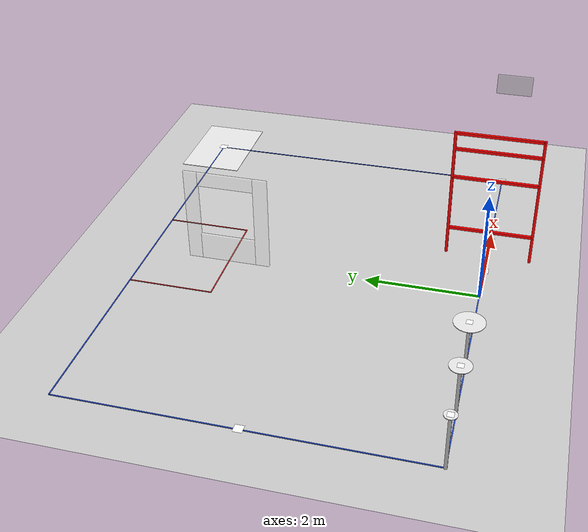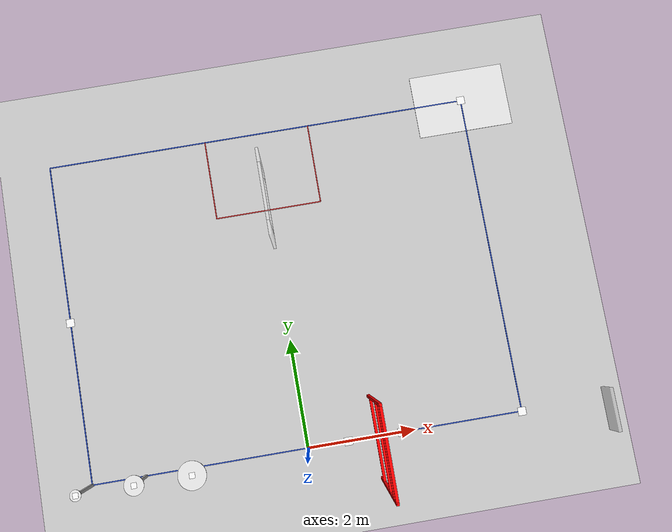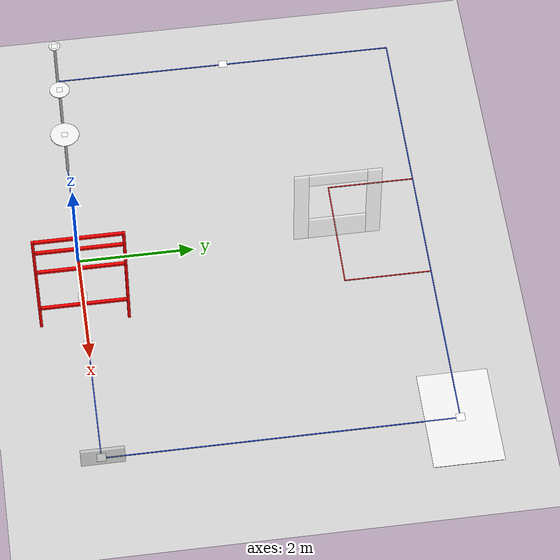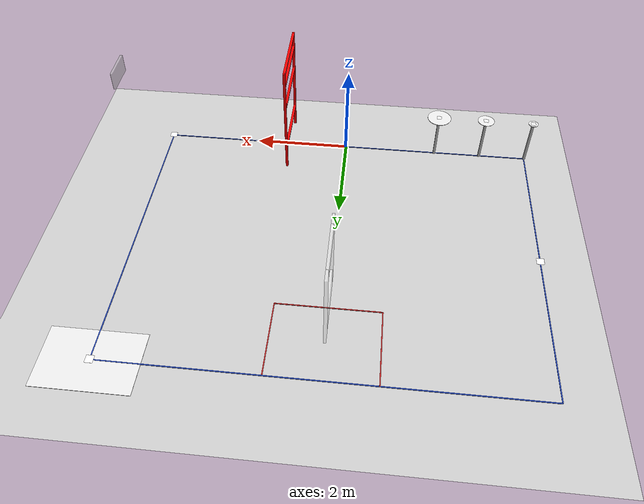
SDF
<sdf version="1.9">
 <world name="imav_course">
  <physics type="ode">
   <max_step_size>0.004</max_step_size>
   <real_time_factor>1.0</real_time_factor>
   <real_time_update_rate>250</real_time_update_rate>
  </physics>
  <plugin name="gz::sim::systems::Physics" filename="gz-sim-physics-system"/>
  <plugin name="gz::sim::systems::UserCommands" filename="gz-sim-user-commands-system"/>
  <plugin name="gz::sim::systems::SceneBroadcaster" filename="gz-sim-scene-broadcaster-system"/>
  <plugin name="gz::sim::systems::Contact" filename="gz-sim-contact-system"/>
  <plugin name="gz::sim::systems::Imu" filename="gz-sim-imu-system"/>
  <plugin name="gz::sim::systems::AirPressure" filename="gz-sim-air-pressure-system"/>
  <plugin name="gz::sim::systems::ApplyLinkWrench" filename="gz-sim-apply-link-wrench-system"/>
  <plugin name="gz::sim::systems::NavSat" filename="gz-sim-navsat-system"/>
  <plugin name="gz::sim::systems::Sensors" filename="gz-sim-sensors-system">
   <render_engine>ogre2</render_engine>
  </plugin>
  <gravity>0 0 -9.81</gravity>
  <magnetic_field>6e-06 2.3e-05 -4.2e-05</magnetic_field>
  <atmosphere type="adiabatic"/>
  <scene>
   <grid>false</grid>
   <ambient>0.4 0.4 0.4 1</ambient>
   <background>0.7 0.7 0.7 1</background>
   <shadows>true</shadows>
  </scene>
  <light name="ambient_light" type="point">
   <cast_shadows>false</cast_shadows>
   <pose>0 0 10 0 0 0</pose>
   <diffuse>0.8 0.8 0.8 1</diffuse>
   <specular>0.2 0.2 0.2 1</specular>
   <attenuation>
    <range>20</range>
    <constant>0.5</constant>
    <linear>0.01</linear>
    <quadratic>0.001</quadratic>
   </attenuation>
  </light>
  <model name="ground_plane">
   <static>true</static>
   <link name="link">
    <collision name="collision">
     <geometry><plane><normal>0 0 1</normal><size>100 100</size></plane></geometry>
    </collision>
    <visual name="visual">
     <geometry><plane><normal>0 0 1</normal><size>100 100</size></plane></geometry>
     <material><ambient>0.8 0.8 0.8 1</ambient><diffuse>0.8 0.8 0.8 1</diffuse></material>
    </visual>
   </link>
  </model>
  <model name="blue_tape_1">
   <static>true</static>
   <link name="link">
    <collision name="collision"><geometry><box><size>8 0.019 0.01</size></box></geometry></collision>
    <visual name="visual">
     <geometry><box><size>8 0.019 0.01</size></box></geometry>
     <material>
      <script><uri>file://media/materials/scripts/gazebo.material</uri><name>Gazebo/Blue</name></script>
     </material>
    </visual>
   </link>
   <pose>0 0 0.005 0 0 0</pose>
  </model>
  <model name="blue_tape_2">
   <static>true</static>
   <link name="link">
    <collision name="collision"><geometry><box><size>8 0.019 0.01</size></box></geometry></collision>
    <visual name="visual">
     <geometry><box><size>8 0.019 0.01</size></box></geometry>
     <material>
      <script><uri>file://media/materials/scripts/gazebo.material</uri><name>Gazebo/Blue</name></script>
     </material>
    </visual>
   </link>
   <pose>0 6 0.005 0 0 0</pose>
  </model>
  <model name="blue_tape_3">
   <static>true</static>
   <link name="link">
    <collision name="collision"><geometry><box><size>6 0.019 0.01</size></box></geometry></collision>
    <visual name="visual">
     <geometry><box><size>6 0.019 0.01</size></box></geometry>
     <material>
      <script><uri>file://media/materials/scripts/gazebo.material</uri><name>Gazebo/Blue</name></script>
     </material>
    </visual>
   </link>
   <pose>4 3 0.005 0 0 1.5708</pose>
  </model>
  <model name="blue_tape_4">
   <static>true</static>
   <link name="link">
    <collision name="collision"><geometry><box><size>6 0.019 0.01</size></box></geometry></collision>
    <visual name="visual">
     <geometry><box><size>6 0.019 0.01</size></box></geometry>
     <material>
      <script><uri>file://media/materials/scripts/gazebo.material</uri><name>Gazebo/Blue</name></script>
     </material>
    </visual>
   </link>
   <pose>-4 3 0.005 0 0 1.5708</pose>
  </model>
  <model name="vertical_gate_52_5">
   <static>true</static>
   <link name="link">
    <collision name="collision"><geometry><box><size>0.05 1.5 0.05</size></box></geometry></collision>
    <visual name="visual">
     <geometry><box><size>0.05 1.5 0.05</size></box></geometry>
     <material><ambient>1 0 0 1</ambient><diffuse>1 0 0 1</diffuse></material>
    </visual>
   </link>
   <pose>1.25 0 0.525 0 0 0</pose>
  </model>
  <model name="vertical_gate_157_5">
   <static>true</static>
   <link name="link">
    <collision name="collision"><geometry><box><size>0.05 1.5 0.05</size></box></geometry></collision>
    <visual name="visual">
     <geometry><box><size>0.05 1.5 0.05</size></box></geometry>
     <material><ambient>1 0 0 1</ambient><diffuse>1 0 0 1</diffuse></material>
    </visual>
   </link>
   <pose>1.25 0 1.575 0 0 0</pose>
  </model>
  <model name="vertical_gate_212_5">
   <static>true</static>
   <link name="link">
    <collision name="collision"><geometry><box><size>0.05 1.5 0.05</size></box></geometry></collision>
    <visual name="visual">
     <geometry><box><size>0.05 1.5 0.05</size></box></geometry>
     <material><ambient>1 0 0 1</ambient><diffuse>1 0 0 1</diffuse></material>
    </visual>
   </link>
   <pose>1.25 0 2.125 0 0 0</pose>
  </model>
  <model name="vertical_gate_242_5">
   <static>true</static>
   <link name="link">
    <collision name="collision"><geometry><box><size>0.05 1.5 0.05</size></box></geometry></collision>
    <visual name="visual">
     <geometry><box><size>0.05 1.5 0.05</size></box></geometry>
     <material><ambient>1 0 0 1</ambient><diffuse>1 0 0 1</diffuse></material>
    </visual>
   </link>
   <pose>1.25 0 2.425 0 0 0</pose>
  </model>
  <model name="vertical_gate_side">
   <static>true</static>
   <link name="link">
    <collision name="collision"><geometry><box><size>0.05 0.05 2.45</size></box></geometry></collision>
    <visual name="visual">
     <geometry><box><size>0.05 0.05 2.45</size></box></geometry>
     <material><ambient>1 0 0 1</ambient><diffuse>1 0 0 1</diffuse></material>
    </visual>
   </link>
   <pose>1.25 0.75 1.225 0 0 0</pose>
  </model>
  <model name="vertical_gate_side_2">
   <static>true</static>
   <link name="link">
    <collision name="collision"><geometry><box><size>0.05 0.05 2.45</size></box></geometry></collision>
    <visual name="visual">
     <geometry><box><size>0.05 0.05 2.45</size></box></geometry>
     <material><ambient>1 0 0 1</ambient><diffuse>1 0 0 1</diffuse></material>
    </visual>
   </link>
   <pose>1.25 -0.75 1.225 0 0 0</pose>
  </model>
  <model name="landing_zone_50">
   <static>true</static>
   <link name="link">
    <collision name="collision">
     <geometry><cylinder><radius>0.25</radius><length>0.01</length></cylinder></geometry>
    </collision>
    <visual name="visual">
     <geometry><cylinder><radius>0.25</radius><length>0.01</length></cylinder></geometry>
     <material>
      <script><uri>file://media/materials/scripts/gazebo.material</uri><name>Gazebo/White</name></script>
     </material>
    </visual>
   </link>
   <pose>-2 0 1.01 0 0 0</pose>
  </model>
  <model name="landing_zone_leg">
   <static>true</static>
   <link name="link">
    <collision name="collision"><geometry><box><size>0.05 0.05 1</size></box></geometry></collision>
    <visual name="visual"><geometry><box><size>0.05 0.05 1</size></box></geometry></visual>
   </link>
   <pose>-4 0 0.5 0 0 0</pose>
  </model>
  <model name="landing_zone_leg_2">
   <static>true</static>
   <link name="link">
    <collision name="collision"><geometry><box><size>0.05 0.05 1</size></box></geometry></collision>
    <visual name="visual"><geometry><box><size>0.05 0.05 1</size></box></geometry></visual>
   </link>
   <pose>-3 0 0.5 0 0 0</pose>
  </model>
  <model name="landing_zone_leg_3">
   <static>true</static>
   <link name="link">
    <collision name="collision"><geometry><box><size>0.05 0.05 1</size></box></geometry></collision>
    <visual name="visual"><geometry><box><size>0.05 0.05 1</size></box></geometry></visual>
   </link>
   <pose>-2 0 0.5 0 0 0</pose>
  </model>
  <model name="landing_zone_35">
   <static>true</static>
   <link name="link">
    <collision name="collision">
     <geometry><cylinder><radius>0.175</radius><length>0.01</length></cylinder></geometry>
    </collision>
    <visual name="visual">
     <geometry><cylinder><radius>0.175</radius><length>0.01</length></cylinder></geometry>
     <material>
      <script><uri>file://media/materials/scripts/gazebo.material</uri><name>Gazebo/White</name></script>
     </material>
    </visual>
   </link>
   <pose>-3 0 1.01 0 0 0</pose>
  </model>
  <model name="landing_zone_20">
   <static>true</static>
   <link name="link">
    <collision name="collision">
     <geometry><cylinder><radius>0.1</radius><length>0.01</length></cylinder></geometry>
    </collision>
    <visual name="visual">
     <geometry><cylinder><radius>0.1</radius><length>0.01</length></cylinder></geometry>
     <material>
      <script><uri>file://media/materials/scripts/gazebo.material</uri><name>Gazebo/White</name></script>
     </material>
    </visual>
   </link>
   <pose>-4 0 1.01 0 0 0</pose>
  </model>
  <model name="wildlife_monitor">
   <static>true</static>
   <link name="link">
    <collision name="collision"><geometry><box><size>0.05 0.708 0.398</size></box></geometry></collision>
    <visual name="visual">
     <geometry><box><size>0.05 0.708 0.398</size></box></geometry>
     <material>
      <script><uri>file://media/materials/scripts/gazebo.material</uri><name>Gazebo/Transparent</name></script>
     </material>
    </visual>
   </link>
   <pose>5 0 1.7 0 0 0</pose>
  </model>
  <model name="red_tape_1">
   <static>true</static>
   <link name="link">
    <collision name="collision">
     <geometry><box><size>1.5 0.019 0.01</size></box></geometry>
     <surface><friction><ode><mu>1.0</mu><mu2>1.0</mu2></ode></friction></surface>
    </collision>
    <visual name="visual">
     <geometry><box><size>1.5 0.019 0.01</size></box></geometry>
     <material>
      <script><uri>file://media/materials/scripts/gazebo.material</uri><name>Gazebo/Red</name></script>
     </material>
    </visual>
   </link>
   <pose>-1 5.25 0.005 0 0 1.5708</pose>
  </model>
  <model name="red_tape_2">
   <static>true</static>
   <link name="link">
    <collision name="collision">
     <geometry><box><size>1.5 0.019 0.01</size></box></geometry>
     <surface><friction><ode><mu>1.0</mu><mu2>1.0</mu2></ode></friction></surface>
    </collision>
    <visual name="visual">
     <geometry><box><size>1.5 0.019 0.01</size></box></geometry>
     <material>
      <script><uri>file://media/materials/scripts/gazebo.material</uri><name>Gazebo/Red</name></script>
     </material>
    </visual>
   </link>
   <pose>1 5.25 0.005 0 0 1.5708</pose>
  </model>
  <model name="red_tape_3">
   <static>true</static>
   <link name="link">
    <collision name="collision">
     <geometry><box><size>2 0.019 0.01</size></box></geometry>
     <surface><friction><ode><mu>1.0</mu><mu2>1.0</mu2></ode></friction></surface>
    </collision>
    <visual name="visual">
     <geometry><box><size>2 0.019 0.01</size></box></geometry>
     <material>
      <script><uri>file://media/materials/scripts/gazebo.material</uri><name>Gazebo/Red</name></script>
     </material>
    </visual>
   </link>
   <pose>0 4.5 0.005 0 0 0</pose>
  </model>
  <model name="acrylic_1">
   <static>true</static>
   <link name="link">
    <collision name="collision"><geometry><box><size>0.05 1 0.5</size></box></geometry></collision>
    <visual name="visual">
     <geometry><box><size>0.05 1 0.5</size></box></geometry>
     <material>
      <ambient>1 1 1 0.3</ambient>
      <diffuse>1 1 1 0.3</diffuse>
      <specular>0.1 0.1 0.1 0.3</specular>
      <emissive>0 0 0 0</emissive>
     </material>
    </visual>
   </link>
   <pose>0 4.5 0.25 0 0 0</pose>
  </model>
  <model name="acrylic_2">
   <static>true</static>
   <link name="link">
    <collision name="collision"><geometry><box><size>0.05 1 0.25</size></box></geometry></collision>
    <visual name="visual">
     <geometry><box><size>0.05 1 0.25</size></box></geometry>
     <material>
      <ambient>1 1 1 0.3</ambient>
      <diffuse>1 1 1 0.3</diffuse>
      <specular>0.1 0.1 0.1 0.3</specular>
      <emissive>0 0 0 0</emissive>
     </material>
    </visual>
   </link>
   <pose>0 4.5 1.625 0 0 0</pose>
  </model>
  <model name="acrylic_3">
   <static>true</static>
   <link name="link">
    <collision name="collision"><geometry><box><size>0.05 0.25 1.75</size></box></geometry></collision>
    <visual name="visual">
     <geometry><box><size>0.05 0.25 1.75</size></box></geometry>
     <material>
      <ambient>1 1 1 0.3</ambient>
      <diffuse>1 1 1 0.3</diffuse>
      <specular>0.1 0.1 0.1 0.3</specular>
      <emissive>0 0 0 0</emissive>
     </material>
    </visual>
   </link>
   <pose>0 5.125 0.875 0 0 0</pose>
  </model>
  <model name="acrylic_4">
   <static>true</static>
   <link name="link">
    <collision name="collision"><geometry><box><size>0.05 0.25 1.75</size></box></geometry></collision>
    <visual name="visual">
     <geometry><box><size>0.05 0.25 1.75</size></box></geometry>
     <material>
      <ambient>1 1 1 0.3</ambient>
      <diffuse>1 1 1 0.3</diffuse>
      <specular>0.1 0.1 0.1 0.3</specular>
      <emissive>0 0 0 0</emissive>
     </material>
    </visual>
   </link>
   <pose>0 3.875 0.875 0 0 0</pose>
  </model>
  <model name="start_zone">
   <static>true</static>
   <link name="link">
    <collision name="collision">
     <geometry><box><size>1.8 1.2 0.001</size></box></geometry>
     <surface><friction><ode><mu>1.0</mu><mu2>1.0</mu2></ode></friction></surface>
    </collision>
    <visual name="visual">
     <geometry><box><size>1.8 1.2 0.01</size></box></geometry>
     <material>
      <script><uri>file://media/materials/scripts/gazebo.material</uri><name>Gazebo/White</name></script>
     </material>
    </visual>
   </link>
   <pose>4 6 0.0025 0 0 0</pose>
  </model>
  <include><uri>model://arucotag_100</uri></include>
  <include><uri>model://arucotag_105</uri></include>
  <include><uri>model://arucotag_200</uri></include>
  <include><uri>model://arucotag_205</uri></include>
  <include><uri>model://arucotag_300</uri></include>
  <include><uri>model://arucotag_301</uri></include>
  <include><uri>model://arucotag_302</uri></include>
  <include><uri>model://arucotag_400</uri></include>
 </world>
</sdf>

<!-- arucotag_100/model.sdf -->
<sdf version='1.9'>
  <model name='arucotag_100'>
    <static>true</static>
    <pose>4 6 0.025 0 0 0</pose>
    <link name='base'>
      <visual name='base_visual'>
        <geometry>
          <plane>
            <normal>0 0 1</normal>
            <size>0.15 0.15</size>
          </plane>
        </geometry>
        <material>
          <diffuse>1 1 1 1</diffuse>
          <specular>0.4 0.4 0.4 1</specular>
          <pbr>
            <metal>
              <albedo_map>model://arucotag_100/arucotag_100.png</albedo_map>
            </metal>
          </pbr>
        </material>
      </visual>
    </link>
  </model>
</sdf>

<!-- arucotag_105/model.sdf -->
<sdf version='1.9'>
  <model name='arucotag_105'>
    <static>true</static>
    <pose>4 0 0.025 0 0 0</pose>
    <link name='base'>
      <visual name='base_visual'>
        <geometry>
          <plane>
            <normal>0 0 1</normal>
            <size>0.15 0.15</size>
          </plane>
        </geometry>
        <material>
          <diffuse>1 1 1 1</diffuse>
          <specular>0.4 0.4 0.4 1</specular>
          <pbr>
            <metal>
              <albedo_map>model://arucotag_105/arucotag_105.png</albedo_map>
            </metal>
          </pbr>
        </material>
      </visual>
    </link>
  </model>
</sdf>

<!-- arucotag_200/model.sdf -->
<sdf version='1.9'>
  <model name='arucotag_200'>
    <static>true</static>
    <pose>1.75 0 0.025 0 0 0</pose>
    <link name='base'>
      <visual name='base_visual'>
        <geometry>
          <plane>
            <normal>0 0 1</normal>
            <size>0.15 0.15</size>
          </plane>
        </geometry>
        <material>
          <diffuse>1 1 1 1</diffuse>
          <specular>0.4 0.4 0.4 1</specular>
          <pbr>
            <metal>
              <albedo_map>model://arucotag_200/arucotag_200.png</albedo_map>
            </metal>
          </pbr>
        </material>
      </visual>
    </link>
  </model>
</sdf>

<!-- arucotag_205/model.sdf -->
<sdf version='1.9'>
  <model name='arucotag_205'>
    <static>true</static>
    <pose>0.75 0 0.025 0 0 0</pose>
    <link name='base'>
      <visual name='base_visual'>
        <geometry>
          <plane>
            <normal>0 0 1</normal>
            <size>0.15 0.15</size>
          </plane>
        </geometry>
        <material>
          <diffuse>1 1 1 1</diffuse>
          <specular>0.4 0.4 0.4 1</specular>
          <pbr>
            <metal>
              <albedo_map>model://arucotag_205/arucotag_205.png</albedo_map>
            </metal>
          </pbr>
        </material>
      </visual>
    </link>
  </model>
</sdf>

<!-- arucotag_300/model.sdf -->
<sdf version='1.9'>
  <model name='arucotag_300'>
    <static>true</static>
    <pose>-2 0 1.016 0 0 0</pose>
    <link name='base'>
      <visual name='base_visual'>
        <geometry>
          <plane>
            <normal>0 0 1</normal>
            <size>0.1 0.1</size>
          </plane>
        </geometry>
        <material>
          <diffuse>1 1 1 1</diffuse>
          <specular>0.4 0.4 0.4 1</specular>
          <pbr>
            <metal>
              <albedo_map>model://arucotag_300/arucotag_300.png</albedo_map>
            </metal>
          </pbr>
        </material>
      </visual>
    </link>
  </model>
</sdf>

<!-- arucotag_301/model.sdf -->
<sdf version='1.9'>
  <model name='arucotag_301'>
    <static>true</static>
    <pose>-3 0 1.016 0 0 0</pose>
    <link name='base'>
      <visual name='base_visual'>
        <geometry>
          <plane>
            <normal>0 0 1</normal>
            <size>0.1 0.1</size>
          </plane>
        </geometry>
        <material>
          <diffuse>1 1 1 1</diffuse>
          <specular>0.4 0.4 0.4 1</specular>
          <pbr>
            <metal>
              <albedo_map>model://arucotag_301/arucotag_301.png</albedo_map>
            </metal>
          </pbr>
        </material>
      </visual>
    </link>
  </model>
</sdf>

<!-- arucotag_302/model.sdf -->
<sdf version='1.9'>
  <model name='arucotag_302'>
    <static>true</static>
    <pose>-4 0 1.016 0 0 0</pose>
    <link name='base'>
      <visual name='base_visual'>
        <geometry>
          <plane>
            <normal>0 0 1</normal>
            <size>0.1 0.1</size>
          </plane>
        </geometry>
        <material>
          <diffuse>1 1 1 1</diffuse>
          <specular>0.4 0.4 0.4 1</specular>
          <pbr>
            <metal>
              <albedo_map>model://arucotag_302/arucotag_302.png</albedo_map>
            </metal>
          </pbr>
        </material>
      </visual>
    </link>
  </model>
</sdf>

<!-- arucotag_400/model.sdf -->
<sdf version='1.9'>
  <model name='arucotag_400'>
    <static>true</static>
    <pose>-4 3 0.025 0 0 0</pose>
    <link name='base'>
      <visual name='base_visual'>
        <geometry>
          <plane>
            <normal>0 0 1</normal>
            <size>0.15 0.15</size>
          </plane>
        </geometry>
        <material>
          <diffuse>1 1 1 1</diffuse>
          <specular>0.4 0.4 0.4 1</specular>
          <pbr>
            <metal>
              <albedo_map>model://arucotag_400/arucotag_400.png</albedo_map>
            </metal>
          </pbr>
        </material>
      </visual>
    </link>
  </model>
</sdf>
